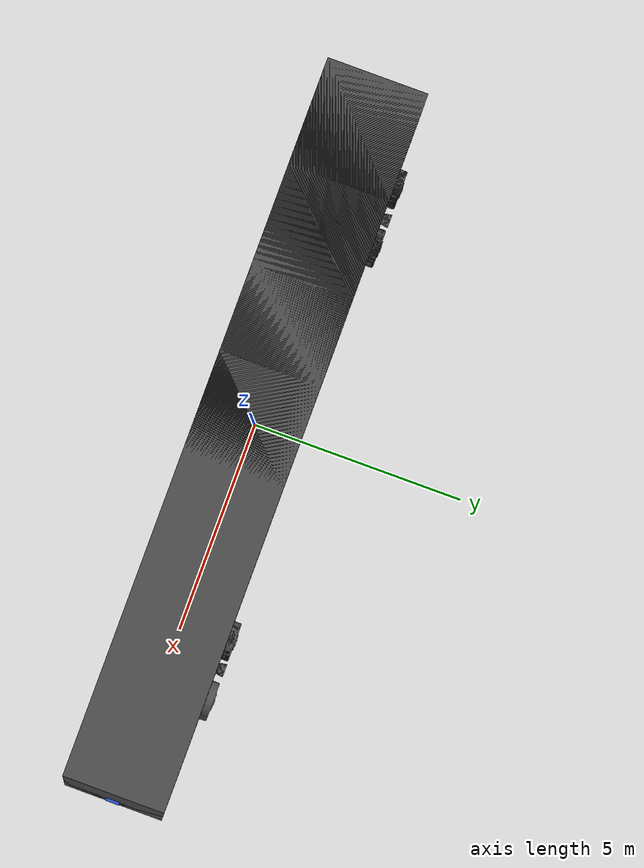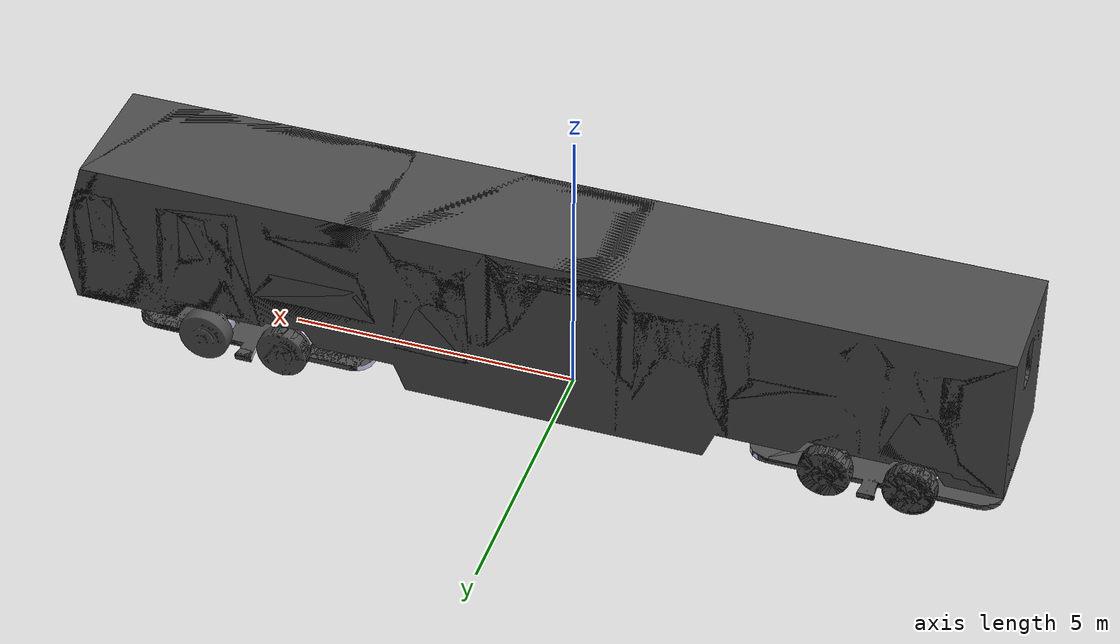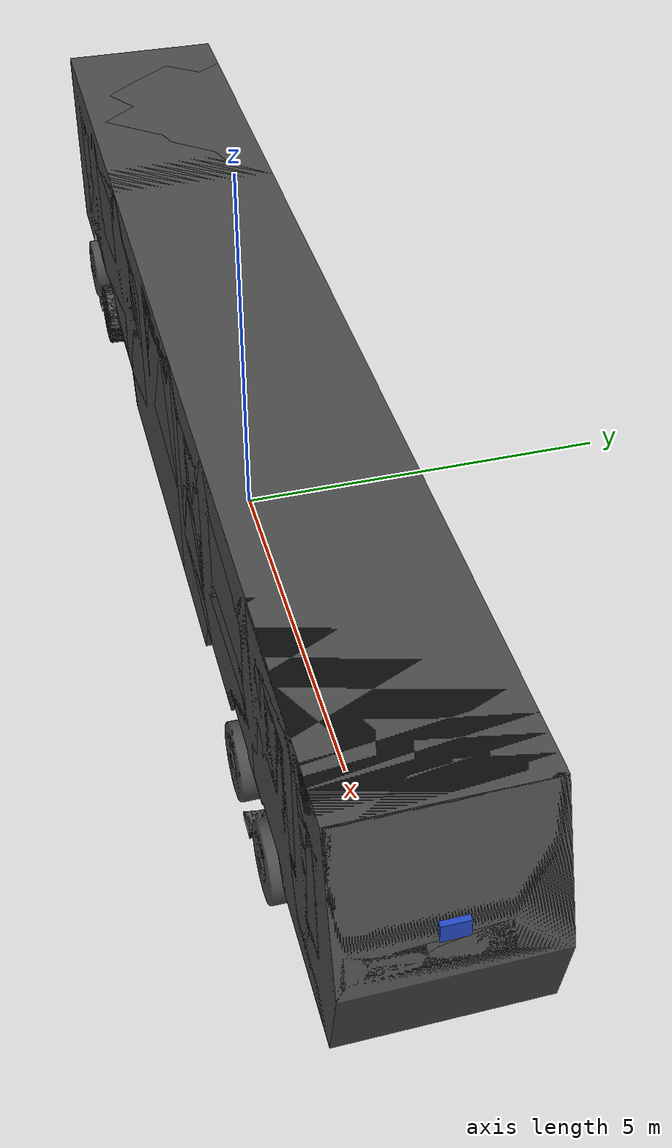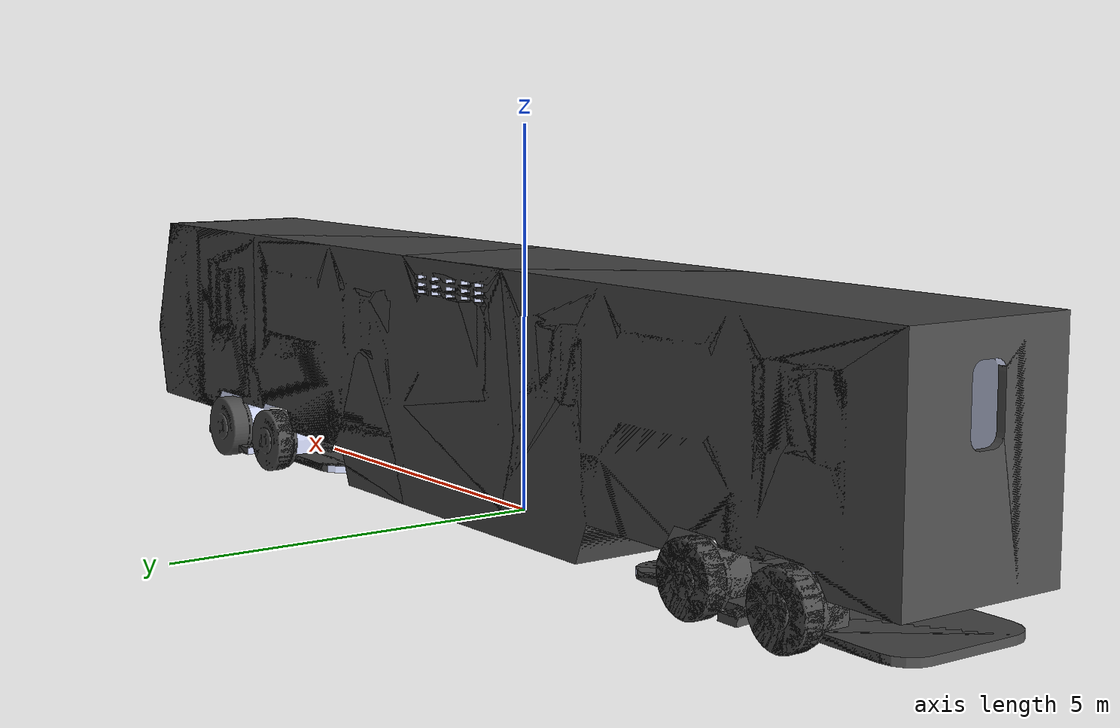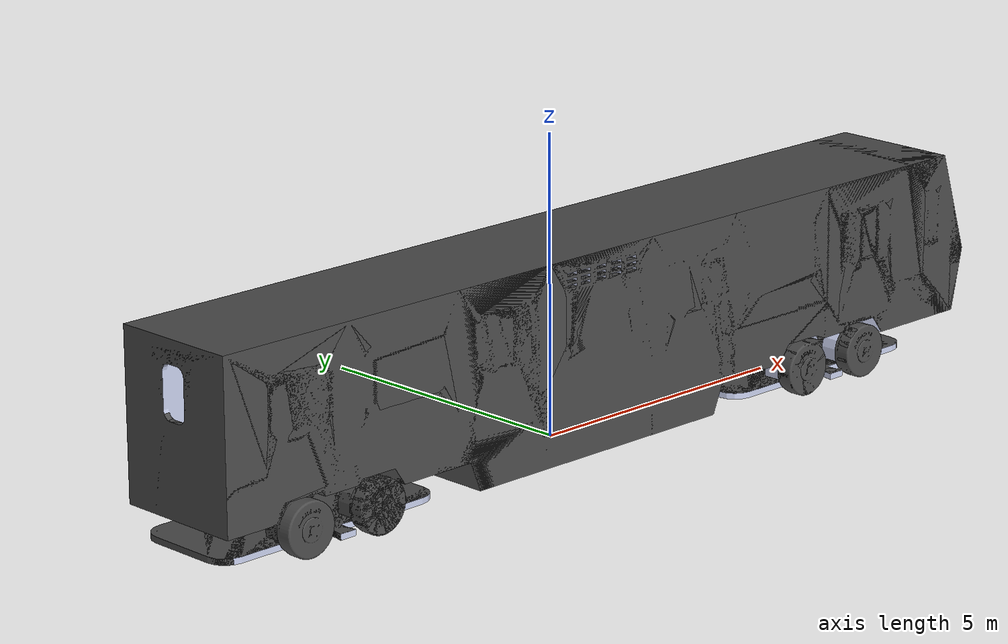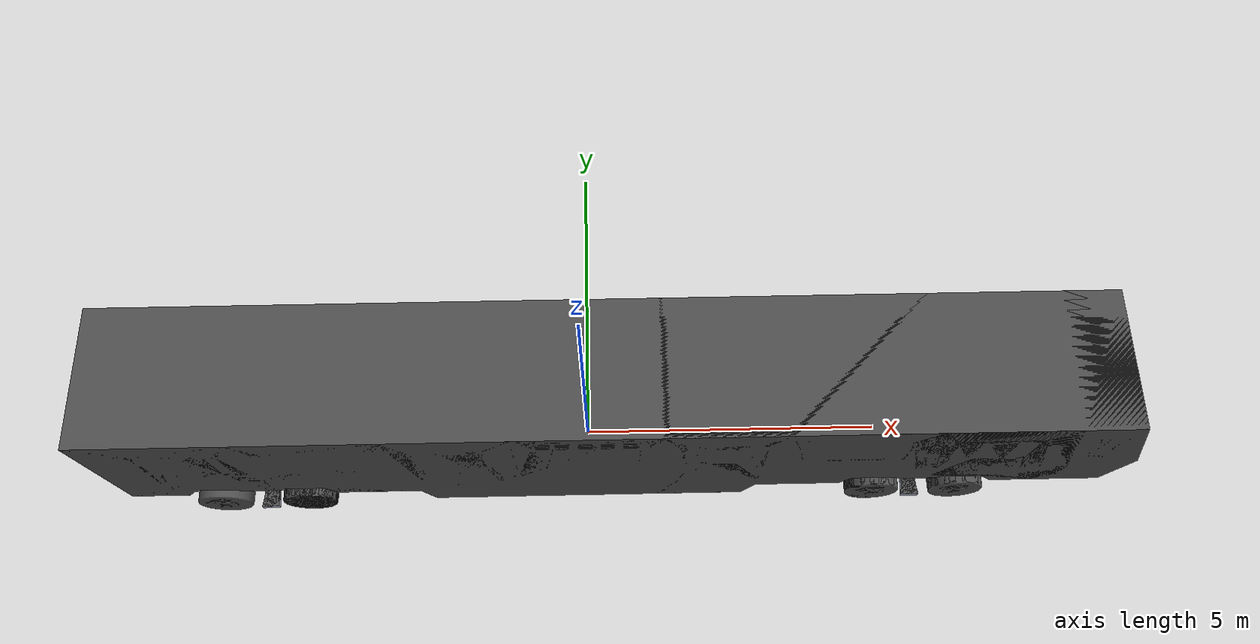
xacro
<?xml version="1.0"?>
<robot xmlns:xacro="http://www.ros.org/wiki/xacro"  name="robot">

    <xacro:include filename="robot_core.xacro"/>
    <xacro:include filename="lidar.xacro"/>
    <xacro:include filename="camera.xacro"/>
    <xacro:include filename="ros2_control.xacro"/>
</robot>

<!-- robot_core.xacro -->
<robot xmlns:xacro="http://www.ros.org/wiki/xacro" >

    <material name="red">
      <color rgba="0 0 1 1"/>
    </material>

    <link name="base_link">
    </link>

    <joint name="Chassis_joint" type="fixed">
        <parent link="base_link"/>
        <child link="chassis"/>
        <origin xyz= "0 0 0"/>
    </joint>

    <link name="chassis">
        <inertial>
         <origin
            xyz="0 0 0"
            rpy="0 0 0" />
         <mass
            value="30000" />
         <inertia
            ixx="39860"
            ixy="10.677"
            ixz="0"
            iyy="710000"
            iyz="58.767"
            izz="696000" />
        </inertial>
        <visual>
         <origin
            xyz="0 0 0"
            rpy="0 0 0" />
         <geometry>
            <mesh
            filename="file://$(find metrolidar)/description/meshes/base_link.dae" />
         </geometry>
         <material
            name="">
            <color
            rgba="0.79216 0.81961 0.93333 1" />
         </material>
        </visual>
        <collision>
         <origin
            xyz="0 0 0"
            rpy="0 0 0" />
         <geometry>
            <mesh
            filename="file://$(find metrolidar)/description/meshes/base_link.dae" />
         </geometry>
        </collision>
    </link>

    <joint name="Llanta1-1_joint" type="continuous">
        <parent link="base_link" />
        <child link="Llanta1-1" />
        <axis xyz="0 1 0" />
        <origin xyz="6.2355 1.1399 0.30167"
                rpy="0 0 0" />
    </joint>

    <link name="Llanta1-1">
        <inertial>
          <origin
            xyz="0 0 0"
            rpy="0 0 0" />
          <mass
            value="500" />
          <inertia
            ixx="30"
            ixy="-0.0030034"
            ixz="-0.0052717"
            iyy="30"
            iyz="0.0030911"
            izz="9" />
        </inertial>
        <visual>
          <origin
            xyz="0 0 0"
            rpy="0 0 0" />
          <geometry>
            <mesh
              filename="file://$(find metrolidar)/description/meshes/Llanta1-1.dae" />
          </geometry>
          <material
            name="">
            <color
              rgba="0.29804 0.29804 0.29804 1" />
          </material>
        </visual>
        <collision>
          <origin
            xyz="0 0 0"
            rpy="0 0 0" />
          <geometry>
            <mesh
              filename="file://$(find metrolidar)/description/meshes/Llanta1-1.dae" />
          </geometry>
        </collision>
    </link>

    <joint name="Llanta1-2_joint" type="continuous">
      <origin
        xyz="6.2355 -1.1101 0.30167"
        rpy="0 0 0" />
      <parent
        link="base_link" />
      <child
        link="Llanta1-2" />
      <axis
        xyz="0 1 0" />
    </joint>
    <link name="Llanta1-2">
     <inertial>
      <origin
        xyz="0 0 0"
        rpy="0 0 0" />
      <mass value="500" />
      <inertia
        ixx="30"
        ixy="0.0013621"
        ixz="0"
        iyy="30"
        iyz="0"
        izz="9" />
     </inertial>
     <visual>
      <origin
        xyz="0 0 0"
        rpy="0 0 0" />
      <geometry>
        <mesh
          filename="file://$(find metrolidar)/description/meshes/Llanta1-2.dae" />
      </geometry>
      <material
        name="">
       <color
          rgba="0.29804 0.29804 0.29804 1" />
      </material>
     </visual>
     <collision>
      <origin
        xyz="0 0 0"
        rpy="0 0 0" />
      <geometry>
        <mesh
          filename="file://$(find metrolidar)/description/meshes/Llanta1-2.dae" />
      </geometry>
     </collision>
    </link>

    <joint name="Llanta1-3_joint" type="continuous">
      <origin
        xyz="4.8055 1.1399 0.30167"
        rpy="0 0 0" />
      <parent
        link="base_link" />
      <child
        link="Llanta1-3" />
      <axis
        xyz="0 1 0" />
    </joint>
    <link name="Llanta1-3">
      <inertial>
        <origin
          xyz="0 0 0"
          rpy="0 0 0" />
        <mass
          value="500" />
        <inertia
          ixx="30"
          ixy="-0.0030034"
          ixz="-0.0052717"
          iyy="30"
          iyz="0.0030911"
          izz="9" />
      </inertial>
      <visual>
        <origin
          xyz="0 0 0"
          rpy="0 0 0" />
        <geometry>
          <mesh
            filename="file://$(find metrolidar)/description/meshes/Llanta1-3.dae" />
        </geometry>
        <material
          name="">
          <color
            rgba="0.29804 0.29804 0.29804 1" />
        </material>
      </visual>
      <collision>
        <origin
          xyz="0 0 0"
          rpy="0 0 0" />
        <geometry>
          <mesh
            filename="file://$(find metrolidar)/description/meshes/Llanta1-3.dae" />
        </geometry>
      </collision>
    </link>

    <link name="Llanta1-4">
      <inertial>
        <origin
          xyz="0 0 0"
          rpy="0 0 0" />
        <mass
          value="500" />
        <inertia
          ixx="30"
          ixy="0.0013621"
          ixz="-0.0032069"
          iyy="30"
          iyz="-0.004089"
          izz="9" />
      </inertial>
      <visual>
        <origin
          xyz="0 0 0"
          rpy="0 0 0" />
        <geometry>
          <mesh
            filename="file://$(find metrolidar)/description/meshes/Llanta1-4.dae" />
        </geometry>
        <material
          name="">
          <color
            rgba="0.29804 0.29804 0.29804 1" />
        </material>
      </visual>
      <collision>
        <origin
          xyz="0 0 0"
          rpy="0 0 0" />
        <geometry>
          <mesh
            filename="file://$(find metrolidar)/description/meshes/Llanta1-4.dae" />
        </geometry>
      </collision>
    </link>
    <joint name="Llanta1-4_joint" type="continuous">
      <origin
        xyz="4.8055 -1.1101 0.30167"
        rpy="0 0 0" />
      <parent
        link="base_link" />
      <child
        link="Llanta1-4" />
      <axis
        xyz="0 1 0" />
    </joint>

    <link name="Llanta2-1">
      <inertial>
        <origin
          xyz="0 0 0"
          rpy="0 0 0" />
        <mass
          value="500" />
        <inertia
          ixx="30"
          ixy="-0.0030034"
          ixz="-0.0052717"
          iyy="30"
          iyz="0.0030911"
          izz="9" />
      </inertial>
      <visual>
        <origin
          xyz="0 0 0"
          rpy="0 0 0" />
        <geometry>
          <mesh
            filename="file://$(find metrolidar)/description/meshes/Llanta2-1.dae" />
        </geometry>
        <material
          name="">
          <color
            rgba="0.29804 0.29804 0.29804 1" />
        </material>
      </visual>
      <collision>
        <origin
          xyz="0 0 0"
          rpy="0 0 0" />
        <geometry>
          <mesh
            filename="file://$(find metrolidar)/description/meshes/Llanta2-1.dae" />
        </geometry>
      </collision>
    </link>
    <joint name="Llanta2-1_joint" type="continuous">
      <origin
        xyz="-4.7145 1.1399 0.30167"
        rpy="0 0 0" />
      <parent
        link="base_link" />
      <child
        link="Llanta2-1" />
      <axis
        xyz="0 1 0" />
    </joint>

    <link name="Llanta2-2">
      <inertial>
        <origin
          xyz="0 0 0"
          rpy="0 0 0" />
        <mass
          value="500" />
        <inertia
          ixx="30"
          ixy="0.0013621"
          ixz="-0.0032069"
          iyy="30"
          iyz="-0.004089"
          izz="9" />
      </inertial>
      <visual>
        <origin
          xyz="0 0 0"
          rpy="0 0 0" />
        <geometry>
          <mesh
            filename="file://$(find metrolidar)/description/meshes/Llanta2-2.dae" />
        </geometry>
        <material
          name="">
          <color
            rgba="0.29804 0.29804 0.29804 1" />
        </material>
      </visual>
      <collision>
        <origin
          xyz="0 0 0"
          rpy="0 0 0" />
        <geometry>
          <mesh
            filename="file://$(find metrolidar)/description/meshes/Llanta2-2.dae" />
        </geometry>
      </collision>
    </link>
    <joint name="Llanta2-2_joint" type="continuous">
      <origin
        xyz="-4.7145 -1.1101 0.30167"
        rpy="0 0 0" />
      <parent
        link="base_link" />
      <child
        link="Llanta2-2" />
      <axis
        xyz="0 1 0" />
    </joint>

    <link name="Llanta2-3">
      <inertial>
        <origin
          xyz="0 0 0"
          rpy="0 0 0" />
        <mass
          value="500" />
        <inertia
          ixx="30"
          ixy="-0.0030034"
          ixz="-0.0052717"
          iyy="30"
          iyz="0.0030911"
          izz="9" />
      </inertial>
      <visual>
        <origin
          xyz="0 0 0"
          rpy="0 0 0" />
        <geometry>
          <mesh
            filename="file://$(find metrolidar)/description/meshes/Llanta2-3.dae" />
        </geometry>
        <material
          name="">
          <color
            rgba="0.29804 0.29804 0.29804 1" />
        </material>
      </visual>
      <collision>
        <origin
          xyz="0 0 0"
          rpy="0 0 0" />
        <geometry>
          <mesh
            filename="file://$(find metrolidar)/description/meshes/Llanta2-3.dae" />
        </geometry>
      </collision>
    </link>
    <joint name="Llanta2-3_joint" type="continuous">
      <origin
        xyz="-6.1445 1.1399 0.30167"
        rpy="0 0 0" />
      <parent
        link="base_link" />
      <child
        link="Llanta2-3" />
      <axis
        xyz="0 1 0" />
    </joint>

    <link name="Llanta2-4">
      <inertial>
        <origin
          xyz="0 0 0"
          rpy="0 0 0" />
        <mass
          value="500" />
        <inertia
          ixx="30"
          ixy="0"
          ixz="0"
          iyy="30"
          iyz="0"
          izz="9" />
      </inertial>
      <visual>
        <origin
          xyz="0 0 0"
          rpy="0 0 0" />
        <geometry>
          <mesh
            filename="file://$(find metrolidar)/description/meshes/Llanta2-4.dae" />
        </geometry>
        <material
          name="">
          <color
            rgba="0.29804 0.29804 0.29804 1" />
        </material>
      </visual>
      <collision>
        <origin
          xyz="0 0 0"
          rpy="0 0 0" />
        <geometry>
          <mesh
            filename="file://$(find metrolidar)/description/meshes/Llanta2-4.dae" />
        </geometry>
      </collision>
    </link>
    <joint name="Llanta2-4_joint" type="continuous">
      <origin
        xyz="-6.1445 -1.1101 0.30167"
        rpy="0 0 0" />
      <parent
        link="base_link" />
      <child
        link="Llanta2-4" />
      <axis
        xyz="0 1 0" />
    </joint>

</robot>

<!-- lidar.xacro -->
<robot xmlns:xacro="http://www.ros.org/wiki/xacro">

    <joint name="laser_joint" type="fixed">
        <parent link="chassis"/>
        <child link="laser_frame"/>
        <origin xyz="8.300 0 .501" rpy="0 0 0"/>
    </joint>

    <link name="laser_frame">
        <visual>
            <geometry>
                <cylinder radius="0.15" length="0.3"/>
            </geometry>

            <material name="red"/>
        </visual>

        <collision>
            <geometry>
                <cylinder radius="0.15" length="0.3"/>
            </geometry>
        </collision>

        <inertial>
            <mass value="0.5" />
            <inertia
                ixx="0.03"
                ixy="0"
                ixz="0"
                iyy="0.03"
                iyz="0"
                izz="0.009" />
        </inertial>
    </link>

    <gazebo reference="laser_frame">
        <material>Gazebo/Blue</material>
        <sensor name="laser" type="ray">
            <pose> 0 0 0 0 0 0 </pose>
            <visualize>true</visualize>
            <update_rate>10</update_rate>
            <ray>
                <scan>
                    <horizontal>
                        <samples>360</samples>
                        <resolution>1</resolution>
                        <min_angle>-0.130899</min_angle>
                        <max_angle>0.130899</max_angle>
                    </horizontal>
                </scan>

                <range>
                    <min>0.3</min>
                    <max>250</max>
                    <resolution>0.01</resolution>
                </range>
            </ray>

            <plugin name="laser_controller" filename="libgazebo_ros_ray_sensor.so">
                <ros>
                    <argument>~/out:=scan</argument>
                </ros>
                <output_type>sensor_msgs/LaserScan</output_type>
                <frame_name>laser_frame</frame_name>
            </plugin>

        </sensor>
    </gazebo>
</robot>

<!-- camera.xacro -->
<robot xmlns:xacro="http://www.ros.org/wiki/xacro">

    <joint name="camera_joint" type="fixed">
        <parent link="chassis"/>
        <child link="camera_link"/>
        <origin xyz="8.6 0 2" rpy="0 0 0"/>
    </joint>

    <link name="camera_link">
        <visual>
            <geometry>
                <box size="0.30 0.30 0.30"/>
            </geometry>

        </visual>
    </link>

    <joint name="camera_ojoint" type="fixed">
        <parent link="camera_link"/>
        <child link="camera_linko"/>
        <origin xyz="0 0 0" rpy="${-pi/2} 0 ${-pi/2}"/>
    </joint>

    <link name="camera_linko"></link>

    <gazebo reference="camera_link">
        <material>Gazebo/Blue</material>
        <sensor name="camera" type="camera">
            <pose> 0 0 0 0 0 0 </pose>
            <visualize>true</visualize>
            <update_rate>30</update_rate>

            <camera>
                <horizontal_fov>0.05236</horizontal_fov>
                <image>
                    <format>R8G8B8</format>
                    <width>1920</width>
                    <height>1080</height>
                </image>
                <clip>
                    <near>10</near>
                    <far>250</far>
                </clip>
            </camera>
            <plugin name="camera_controller" filename="libgazebo_ros_camera.so">
                <frame_name>camera_linko</frame_name>
            </plugin>

        </sensor>
    </gazebo>
</robot>
